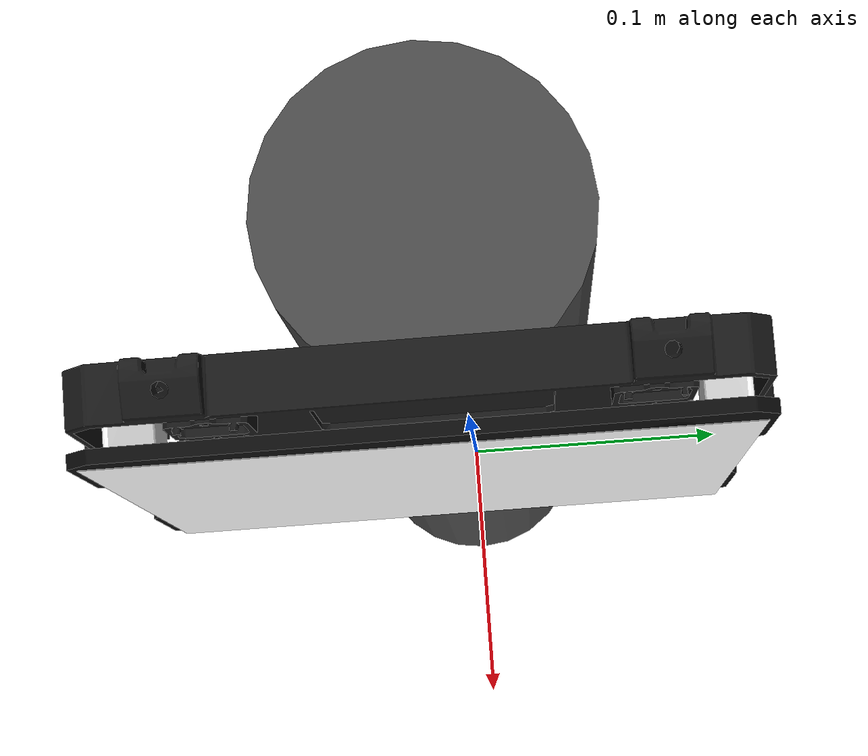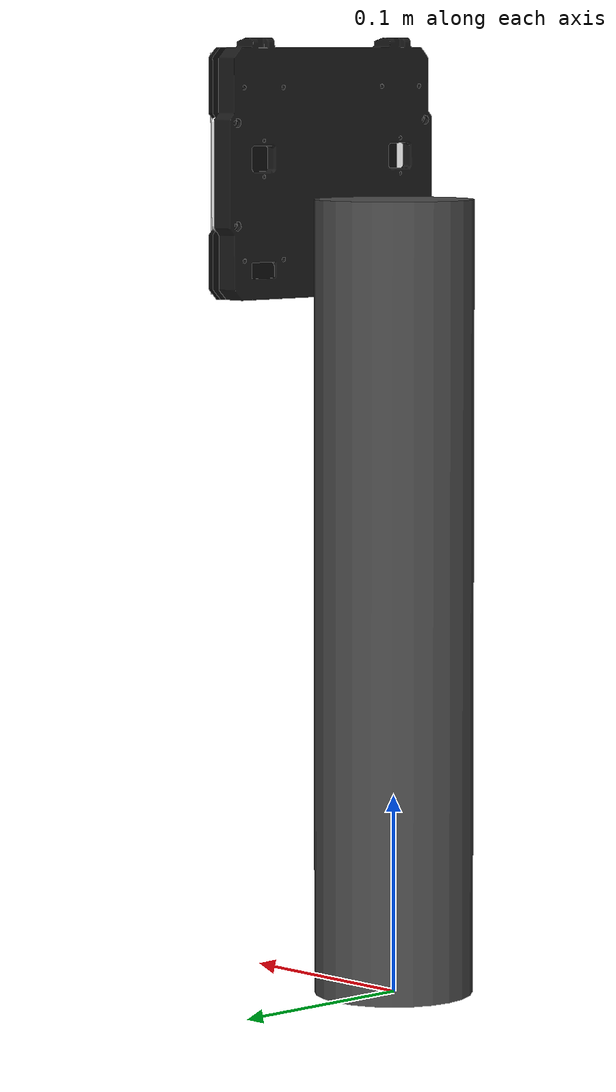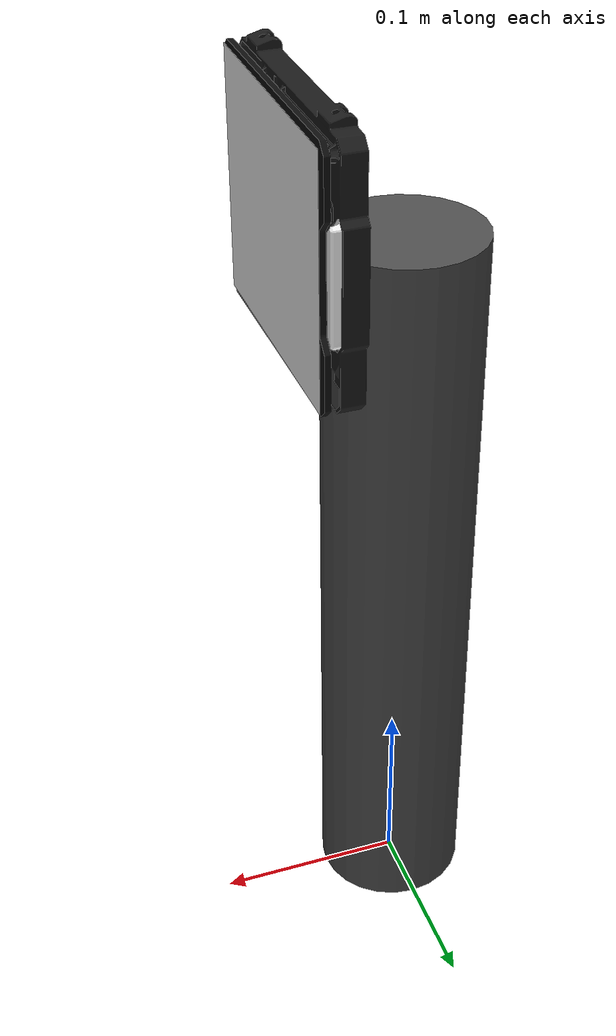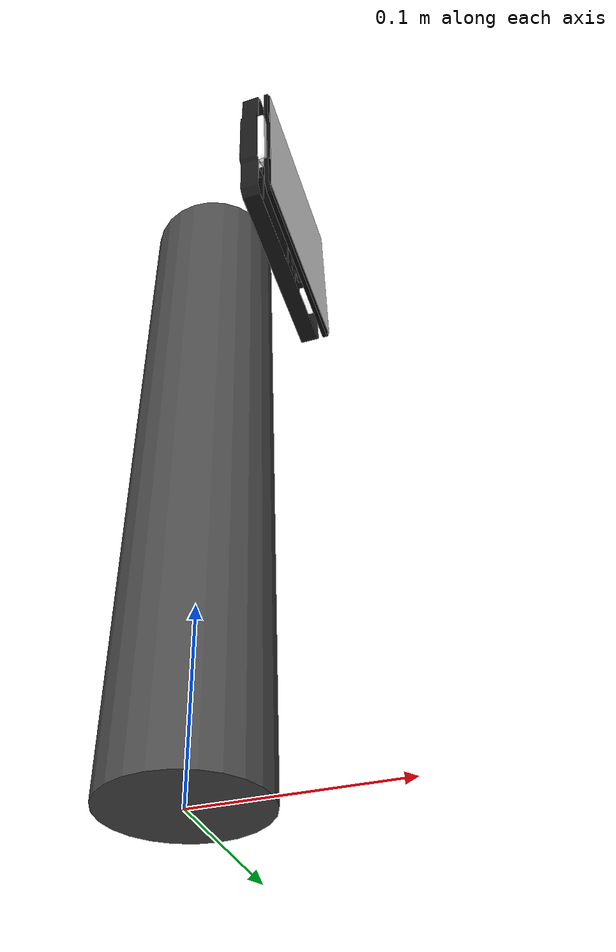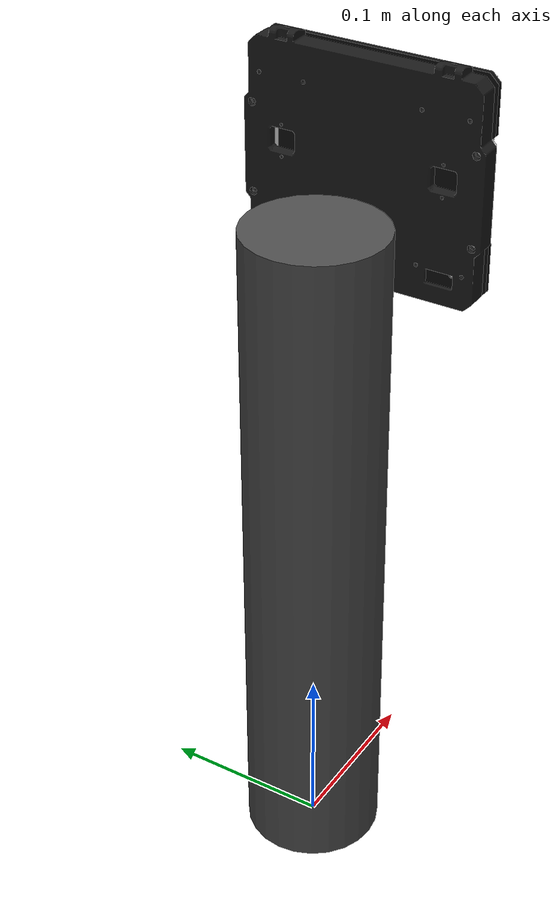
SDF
<?xml version="1.0" ?>
<sdf version="1.8">
  <!-- 自瞄专用静态装甲板靶标 (带真实贴纸与发光灯条) -->
  <model name="armor_target">
    <static>true</static>  <!-- 固定在地面，不会倒 -->
    <pose>0 0 0 0 0 0</pose>

    <!-- 1. 底座立柱 (高度约 0.35m，与真实装甲板离地高度一致) -->
    <link name="base_link">
      <visual name="stand_visual">
        <pose>0 0 0.2 0 0 0</pose>
        <geometry>
          <cylinder>
            <radius>0.04</radius>
            <length>0.4</length>
          </cylinder>
        </geometry>
        <material>
          <ambient>0.2 0.2 0.2 1</ambient>
          <diffuse>0.3 0.3 0.3 1</diffuse>
        </material>
      </visual>
      <collision name="stand_collision">
        <pose>0 0 0.2 0 0 0</pose>
        <geometry>
          <cylinder>
            <radius>0.04</radius>
            <length>0.4</length>
          </cylinder>
        </geometry>
      </collision>
    </link>

    <!-- 2. 装甲板与发光灯条 -->
    <joint name="armor_joint" type="fixed">
      <pose relative_to="base_link">0.05 0 0.35 0 0 0</pose>
      <parent>base_link</parent>
      <child>armor_link</child>
    </joint>

    <link name="armor_link">
      <pose relative_to="armor_joint">0 0 0 0 0 0</pose>

      <!-- 装甲板黑色外壳 -->
      <visual name="armor_shell">
        <geometry>
          <mesh>
            <uri>model://rm21_armor_module/meshes/small_armor.dae</uri>
          </mesh>
        </geometry>
        <material>
          <ambient>0.1 0.1 0.1 1</ambient>
          <diffuse>0.1 0.1 0.1 1</diffuse>
        </material>
      </visual>

      <!-- 中间黑色受击靶面 -->
      <visual name="target_visual">
        <geometry>
          <mesh>
            <uri>model://rm21_armor_module/meshes/small_armor_target.dae</uri>
          </mesh>
        </geometry>
        <material>
          <ambient>0.05 0.05 0.05 1</ambient>
          <diffuse>0.05 0.05 0.05 1</diffuse>
        </material>
      </visual>

      <!-- 两侧发光灯条 -->
      <visual name="light_bar_visual">
        <geometry>
          <mesh>
            <uri>model://rm21_armor_module/meshes/small_armor_light_bar.dae</uri>
          </mesh>
        </geometry>
        <material>
          <ambient>1.0 1.0 1.0 1</ambient>
          <diffuse>1.0 1.0 1.0 1</diffuse>
          <specular>0.5 0.5 0.5 1</specular>
        </material>
      </visual>

      <!-- 数字 1 号装甲板贴纸 -->
      <visual name="sticker_visual">
        <pose>0.014 0 0.0625 1.5708 0 1.5708</pose>
        <geometry>
          <plane>
            <normal>0 0 1</normal>
            <size>0.130 0.120</size>
          </plane>
        </geometry>
        <material>
          <ambient>1.0 1.0 1.0 1</ambient>
          <diffuse>1.0 1.0 1.0 1</diffuse>
          <pbr>
            <metal>
              <albedo_map>model://rm22_armor_module/materials/textures/ua_num1_0.png</albedo_map>
            </metal>
          </pbr>
        </material>
      </visual>

      <collision name="armor_collision">
        <pose>0 0 0.0625 0 0 0</pose>
        <geometry>
          <box>
            <size>0.02 0.14 0.13</size>
          </box>
        </geometry>
      </collision>
    </link>

  </model>
</sdf>
